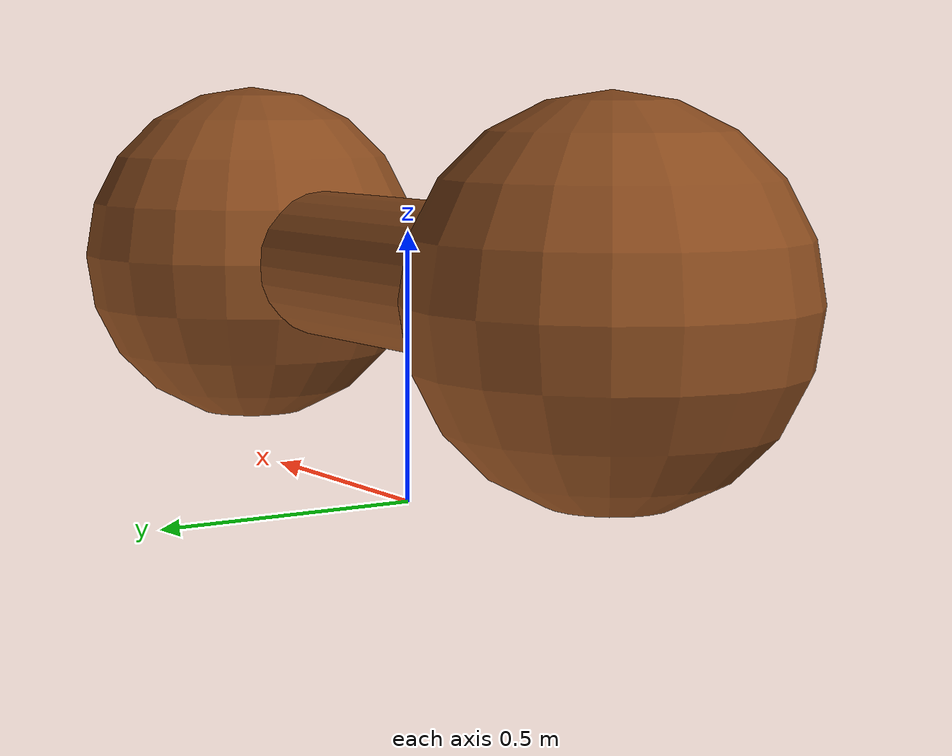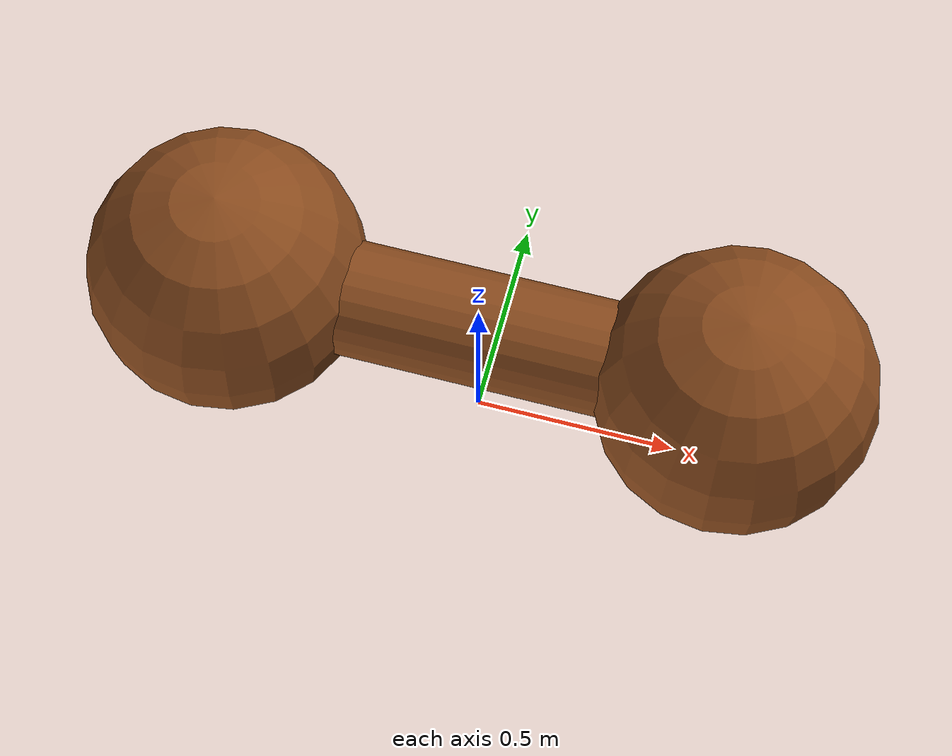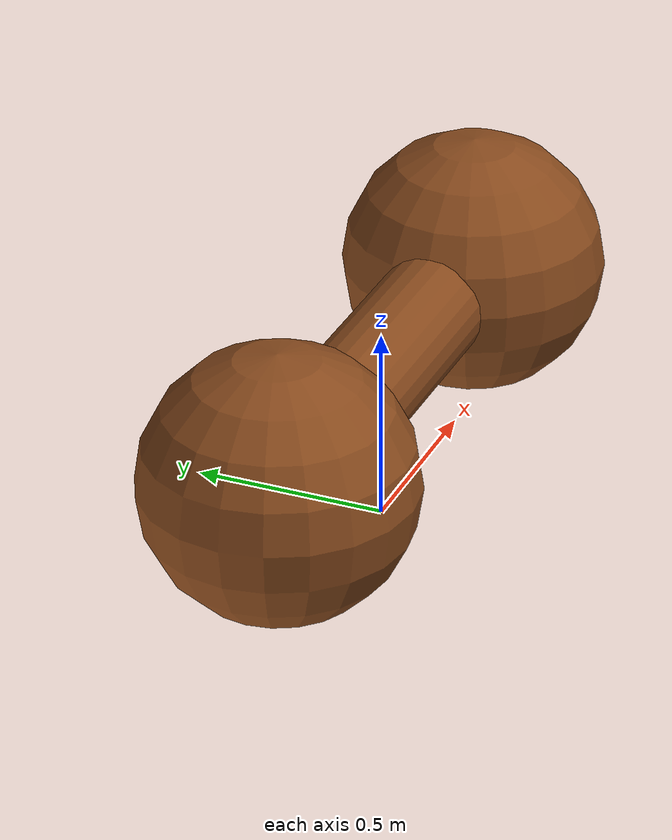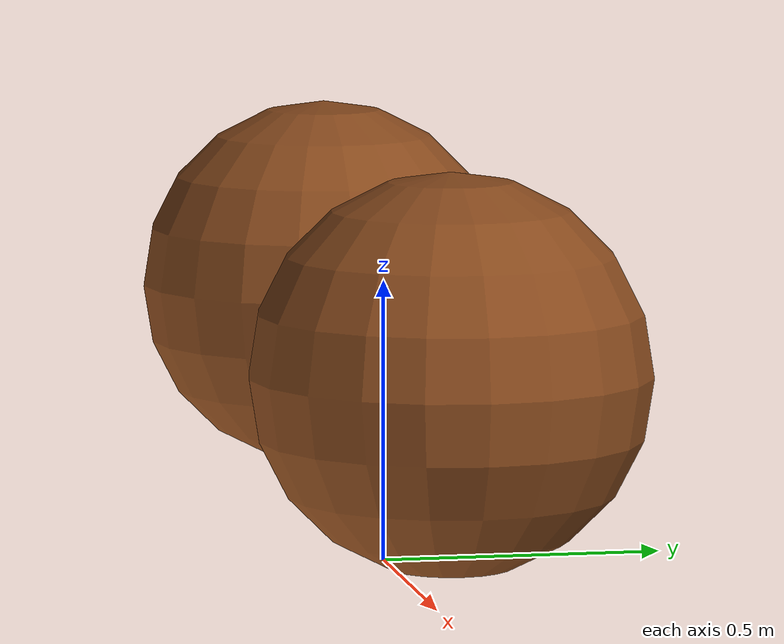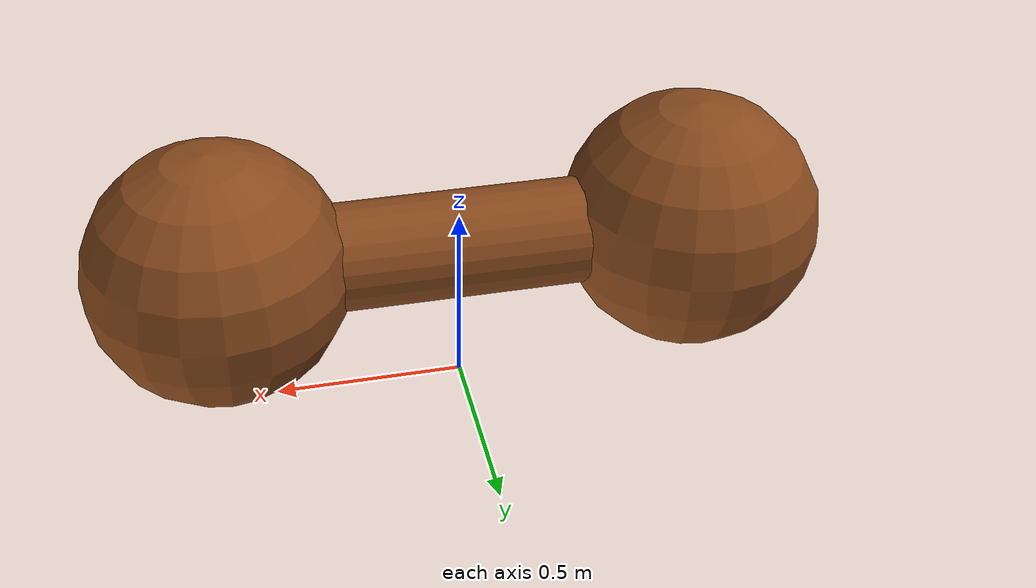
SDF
<?xml version="1.0"?>
<sdf version="1.7">
  <model name="xgc2_geom_dumbbell">
    <link name="body">
      <kinematic>true</kinematic>
      <gravity>false</gravity>
      <collision name="left_weight">
        <pose>-0.62 0 0.42 0 0 0</pose>
        <geometry><sphere><radius>0.34</radius></sphere></geometry>
      </collision>
      <collision name="bar">
        <pose>0 0 0.42 0 1.57079632679 0</pose>
        <geometry><cylinder><radius>0.14</radius><length>1.24</length></cylinder></geometry>
      </collision>
      <collision name="right_weight">
        <pose>0.62 0 0.42 0 0 0</pose>
        <geometry><sphere><radius>0.34</radius></sphere></geometry>
      </collision>
      <visual name="left_weight">
        <pose>-0.62 0 0.42 0 0 0</pose>
        <geometry><sphere><radius>0.34</radius></sphere></geometry>
        <material><ambient>0.55 0.3 0.12 1</ambient><diffuse>0.55 0.3 0.12 1</diffuse></material>
      </visual>
      <visual name="bar">
        <pose>0 0 0.42 0 1.57079632679 0</pose>
        <geometry><cylinder><radius>0.14</radius><length>1.24</length></cylinder></geometry>
        <material><ambient>0.55 0.3 0.12 1</ambient><diffuse>0.55 0.3 0.12 1</diffuse></material>
      </visual>
      <visual name="right_weight">
        <pose>0.62 0 0.42 0 0 0</pose>
        <geometry><sphere><radius>0.34</radius></sphere></geometry>
        <material><ambient>0.55 0.3 0.12 1</ambient><diffuse>0.55 0.3 0.12 1</diffuse></material>
      </visual>
    </link>
  </model>
</sdf>
